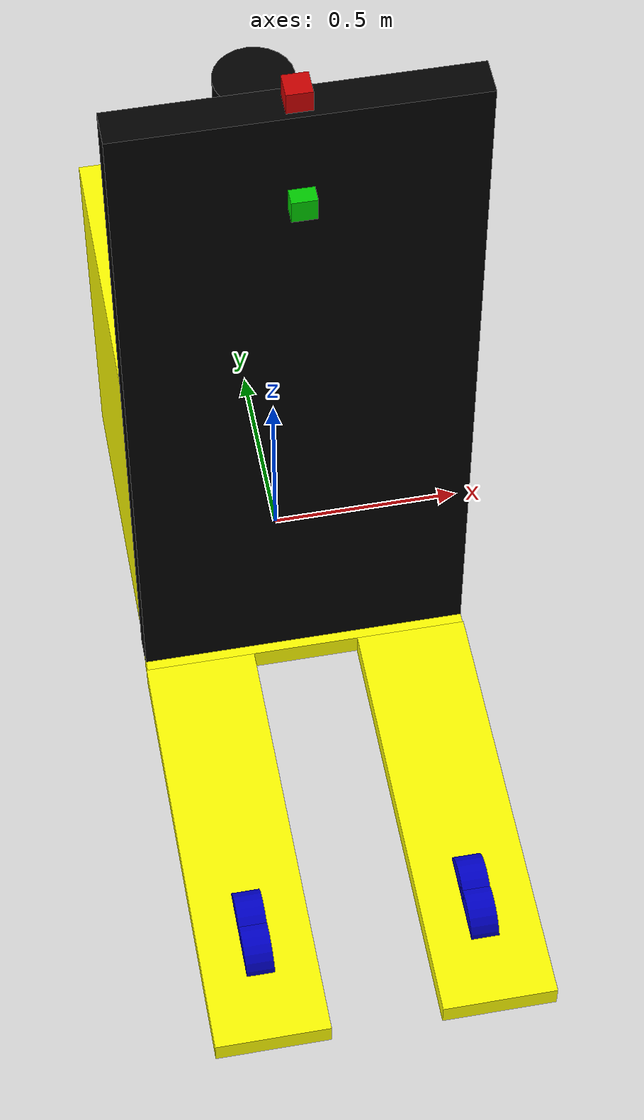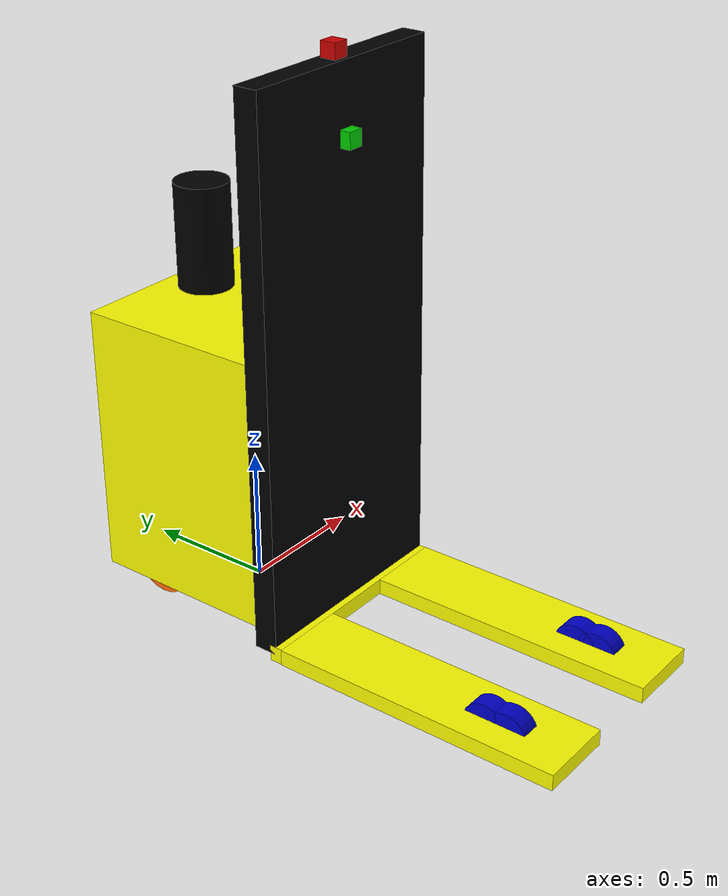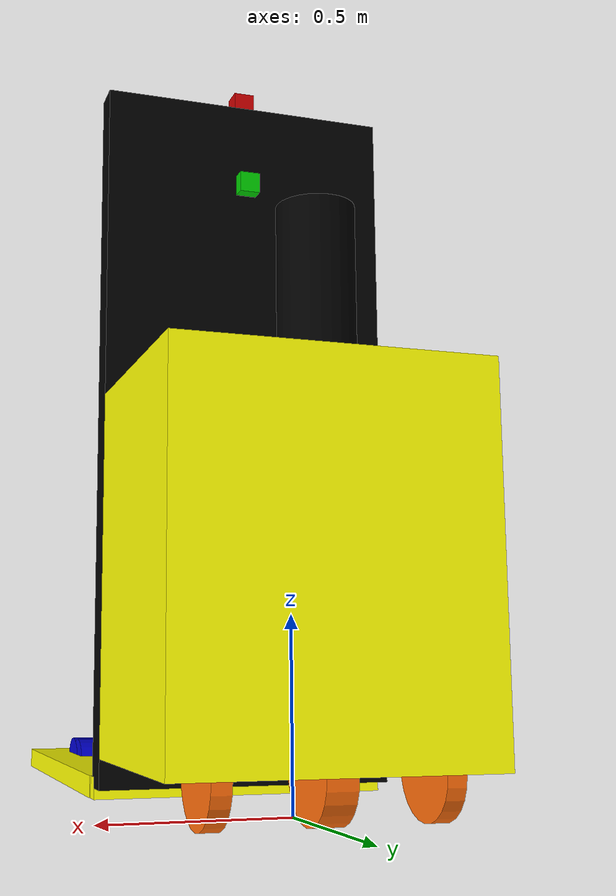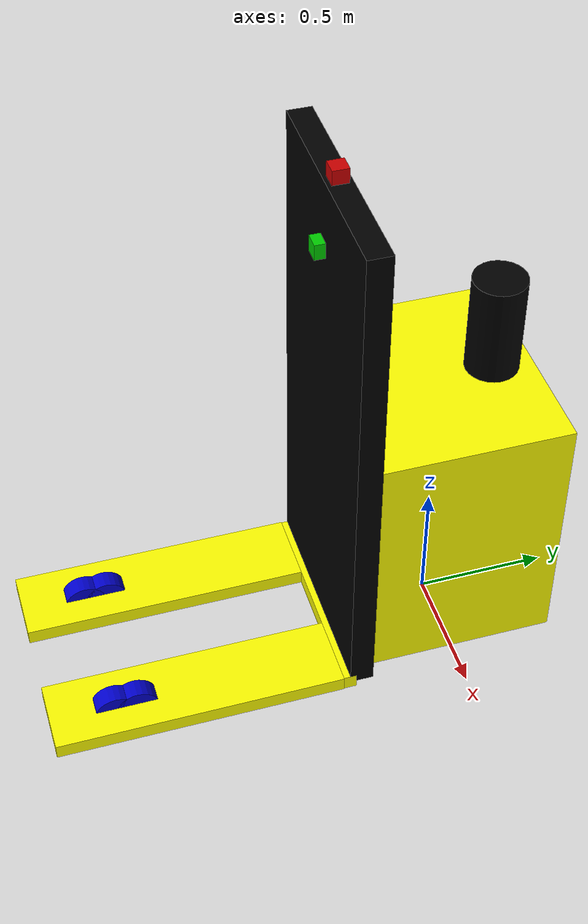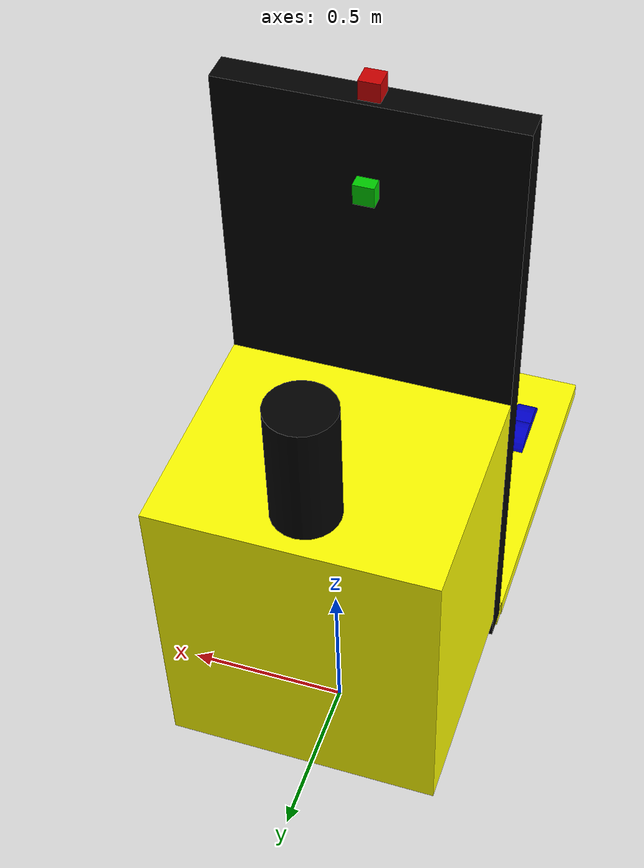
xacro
<?xml version="1.0"?>

<robot name="agv" xmlns:xacro="http://www.ros.org/wiki/xacro">

  <xacro:property name="laser_visual" value="true"/>
  <xacro:property name="imu_visual" value="false"/>

  <xacro:property name="PI" value="3.1415926535897931"/>

  <xacro:property name="chassisHeight" value="1"/>
  <xacro:property name="chassisLength" value="0.84"/>
  <xacro:property name="chassisWidth" value="0.7"/>
  <xacro:property name="chassisMass" value="100"/>

  <xacro:property name="casterRadius" value="0.125"/>
  <xacro:property name="casterWidth" value="0.05"/>
  <xacro:property name="casterMass" value="2"/>

  <xacro:property name="wheelWidth" value="0.08"/>
  <xacro:property name="wheelRadius" value="0.125"/>
  <xacro:property name="wheelMass" value="3"/>

  <xacro:property name="supportWheelWidth" value="0.07"/>
  <xacro:property name="supportWheelRadius" value="0.082"/>
  <xacro:property name="supportWheelMass" value="1"/>

  <xacro:property name="cameraSize" value="0.06"/>
  <xacro:property name="cameraMass" value="0.5"/>

  <xacro:include filename="$(find agv_description)/urdf/agv.gazebo" />
  <xacro:include filename="$(find agv_description)/urdf/materials.xacro" />
  <xacro:include filename="$(find agv_description)/urdf/macros.xacro" />

  <link name="footprint" />

  <joint name="base_joint" type="fixed">
    <parent link="footprint"/>
    <child link="chassis"/>
  </joint>

  <link name="chassis">
    <collision>
      <origin xyz="0 0 0.625" rpy="0 0 0"/>
      <geometry>
	<box size="${chassisLength} ${chassisWidth} ${chassisHeight}"/>
      </geometry>
    </collision>

    <visual>
      <origin xyz="0 0 0.625" rpy="0 0 0"/>
      <geometry>
	<box size="${chassisLength} ${chassisWidth} ${chassisHeight}"/>
      </geometry>
      <material name="yellow"/>
    </visual>

    <inertial>
      <origin xyz="0 0 0.625" rpy="0 0 0"/>
      <mass value="${chassisMass}"/>
      <box_inertia m="${chassisMass}" x="${chassisLength}" y="${chassisWidth}" z="${chassisHeight}"/>
    </inertial>
  </link>

  <joint name="imu_joint" type="fixed">
    <parent link="chassis"/>
    <child link="imu_link"/>
    <origin xyz="0 0.2 0.5" rpy="0 0 0"/>
  </joint>

  <link name="imu_link"/>

    <joint name="base_steer_joint" type="revolute">
        <parent link="chassis"/>
        <child link="steer_link"/>
        <origin xyz="0 0.2 1.125"/>
        <limit effort="1" velocity="0.25" lower="-1.20" upper="1.20"/>
        <axis xyz="0 0 1"/>
    </joint>

    <transmission name="trans1">
      <type>transmission_interface/SimpleTransmission</type>
      <joint name="base_steer_joint">
         <hardwareInterface>EffortJointInterface</hardwareInterface>
      </joint>
      <actuator name="motor1">
          <hardwareInterface>EffortJointInterface</hardwareInterface>
          <mechanicalReduction>1</mechanicalReduction>
      </actuator>

   </transmission>

    <link name="steer_link">
        <visual>
            <origin xyz="0 0 0.195" rpy="0 0 0"/>
            <geometry>
                <cylinder length="0.39" radius="0.1"/>
            </geometry>
            <material name="black"/>
        </visual>
        <inertial>
            <origin xyz="0 0 0.195" rpy="0 0 0"/>
            <mass value="1.5"/>
            <cylinder_inertia m="1.5" r="0.1" h="0.39"/>
        </inertial>
    </link>

    <joint name="steer_to_roll_joint" type="continuous">
        <parent link="steer_link"/>
        <child link="roll_link"/>
        <origin xyz="0 0 -1" rpy="0 0 0"/>
        <limit effort="0.1" velocity="0.35"/>
        <axis xyz="1 0 0"/>
    </joint>

    <transmission name="trans2">
      <type>transmission_interface/SimpleTransmission</type>
      <joint name="steer_to_roll_joint">
         <hardwareInterface>EffortJointInterface</hardwareInterface>
      </joint>
      <actuator name="motor2">
          <hardwareInterface>EffortJointInterface</hardwareInterface>
          <mechanicalReduction>1</mechanicalReduction>
      </actuator>

   </transmission>

    <link name="roll_link">
        <visual>
            <origin xyz="0 0 0" rpy="0 1.57 0"/>
            <geometry>
                <cylinder length="${wheelWidth}" radius="${wheelRadius}"/>
            </geometry>
            <material name="orange"/>
        </visual>
        <inertial>
            <origin xyz="0 0 0" rpy="0 1.57 0"/>
            <mass value="${wheelMass}"/>
            <cylinder_inertia m="${wheelMass}" r="${wheelRadius}" h="${wheelWidth}"/>
        </inertial>
    </link>

  <caster_wheel lr="left" tY="-0.285"/>
  <caster_wheel lr="right" tY="0.285"/>

    <joint name="forklift_base_joint" type="fixed">
        <parent link="chassis"/>
        <child link="forklift_base"/>
        <origin rpy="0 0 0" xyz="0 -0.395 0.043"/>
    </joint>

    <link name="forklift_base">
        <visual>
            <origin xyz="0 0 1" rpy="0 0 0"/>
            <geometry>
                <box size="0.84 0.09 2"/>
            </geometry>
            <material name="black"/>
        </visual>
        <collision>
            <origin xyz="0 0 1" rpy="0 0 0"/>
            <geometry>
                <box size="0.84 0.09 2"/>
            </geometry>
            <material name="black"/>

        </collision>
        <inertial>
            <origin xyz="0 0 1" rpy="0 0 0"/>
            <mass value="50"/>
            <box_inertia m="50" x="0.84" y="0.09" z="2"/>
        </inertial>
    </link>

    <joint name="laser_joint" type="fixed">
        <parent link="forklift_base"/>
        <child link="laser_link"/>
        <origin rpy="0 0 0" xyz="0 0 2.025"/>
    </joint>

    <link name="laser_link">
        <visual>
            <origin xyz="0 0 0" rpy="0 0 0"/>
            <geometry>
                <box size="${cameraSize} ${cameraSize} ${cameraSize}"/>
            </geometry>
            <material name="red"/>
        </visual>
        <inertial>
            <origin xyz="0 0 0" rpy="0 0 0"/>
            <mass value="${cameraMass}"/>
            <box_inertia m="${cameraMass}" x="${cameraSize}" y="${cameraSize}" z="${cameraSize}"/>
        </inertial>
        <collision>
            <origin xyz="0 0 0" rpy="0 0 0"/>
            <geometry>
                <box size="${cameraSize} ${cameraSize} ${cameraSize}"/>
            </geometry>
        </collision>

    </link>

    <joint name="forklift_prismatic_joint" type="prismatic">
        <parent link="forklift_base"/>
        <child link="forklift_prismatic_link"/>
        <origin rpy="0 0 0" xyz="0 -0.045 0"/>
        <limit effort="10" velocity="1.0" lower="0.0" upper="1.5"/>
        <axis xyz="0 0 1"/>
        <calibration rising="-0.5"/>

    </joint>

    <transmission name="trans3">
      <type>transmission_interface/SimpleTransmission</type>
      <joint name="forklift_prismatic_joint">
         <hardwareInterface>EffortJointInterface</hardwareInterface>
      </joint>
      <actuator name="motor3">
          <hardwareInterface>EffortJointInterface</hardwareInterface>
          <mechanicalReduction>1</mechanicalReduction>
      </actuator>

   </transmission>

    <link name="forklift_prismatic_link">
        <visual>
            <origin xyz="0 0 0" rpy="0 0 0"/>
            <geometry>
                <box size="0.84 0.05 0.06"/>
            </geometry>
            <material name="yellow"/>
        </visual>
        <collision>
            <origin xyz="0 0 0" rpy="0 0 0"/>
            <geometry>
                <box size="0.84 0.05 0.06"/>
            </geometry>
        </collision>
        <inertial>
            <origin xyz="0 0 0" rpy="0 0 0"/>
            <mass value="3"/>
            <box_inertia m="3" x="0.84" y="0.05" z="0.06"/>

        </inertial>
    </link>

  <forklift lr="left" tY="-0.280"/>
  <forklift lr="right" tY="0.280"/>

  <camera lr="left" tY="-0.055"/>
  <camera lr="right" tY="0.055"/>

</robot>

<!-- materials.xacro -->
<robot>

  <material name="black">
    <color rgba="0.0 0.0 0.0 1.0"/>
  </material>

  <material name="blue">
    <color rgba="0.0 0.0 0.8 1.0"/>
  </material>

  <material name="green">
    <color rgba="0.0 0.8 0.0 1.0"/>
  </material>

  <material name="grey">
    <color rgba="0.2 0.2 0.2 1.0"/>
  </material>

  <material name="orange">
    <color rgba="${255/255} ${108/255} ${10/255} 1.0"/>
  </material>

  <material name="brown">
    <color rgba="${222/255} ${207/255} ${195/255} 1.0"/>
  </material>

  <material name="red">
    <color rgba="0.8 0.0 0.0 1.0"/>
  </material>

  <material name="white">
    <color rgba="1.0 1.0 1.0 1.0"/>
  </material>

  <material name="yellow">
        <color rgba="1 1 0 1"/>
  </material>

</robot>

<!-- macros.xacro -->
<robot>
     <macro name="cylinder_inertia" params="m r h">
        <inertia  ixx="${m*(3*r*r+h*h)/12}" ixy = "0" ixz = "0"
                  iyy="${m*(3*r*r+h*h)/12}" iyz = "0"
                  izz="${m*r*r/2}" />
      </macro>

      <macro name="box_inertia" params="m x y z">
        <inertia  ixx="${m*(y*y+z*z)/12}" ixy = "0" ixz = "0"
                  iyy="${m*(x*x+z*z)/12}" iyz = "0"
                  izz="${m*(x*x+z*z)/12}" />
      </macro>

      <macro name="sphere_inertia" params="m r">
        <inertia  ixx="${2*m*r*r/5}" ixy = "0" ixz = "0"
                  iyy="${2*m*r*r/5}" iyz = "0"
                  izz="${2*m*r*r/5}" />
      </macro>

    <macro name="caster_wheel" params="lr tY">

      <joint name="${lr}_caster_yawn_joint" type="revolute">
        <parent link="chassis"/>
        <child link="${lr}_caster_base_link"/>
        <origin rpy="0 0 0" xyz="${tY} 0.2 0.125"/>
        <limit effort="0.01" velocity="0.4" lower="-1.5" upper="1.5" />
        <axis xyz="0 0 1"/>
      </joint>

      <link name="${lr}_caster_base_link">
        <visual>
            <origin xyz="0 0 0" rpy="0 0 0"/>
            <geometry>
                <cylinder length="0.005" radius="0.005"/>
            </geometry>
        </visual>
        <inertial>
            <origin xyz="0 0 0" rpy="0 0 0"/>
            <mass value="0.005"/>
            <cylinder_inertia m="0.005" r="0.005" h="0.005"/>
        </inertial>

      </link>

       <joint name="${lr}_wheel_hinge" type="continuous">
          <parent link="${lr}_caster_base_link"/>
          <child link="${lr}_wheel"/>
          <origin xyz="0 0 0" rpy="0 0 0" />
          <axis xyz="1 0 0"/>
          <limit effort="1" velocity="0.01"/>
       </joint>

       <link name="${lr}_wheel">

        <visual>
          <origin xyz="0 0 0" rpy="0 ${PI/2} 0" />
          <geometry>
           <cylinder length="${casterWidth}" radius="${casterRadius}"/>
          </geometry>
          <material name="orange"/>
        </visual>

        <inertial>
          <origin xyz="0 0 0" rpy="0 ${PI/2} 0" />
          <mass value="${casterMass}"/>
          <cylinder_inertia m="${casterMass}" r="${casterRadius}" h="${casterWidth}"/>
        </inertial>
       </link>

        <gazebo reference="${lr}_wheel">
          <mu1 value="1.0"/>
          <mu2 value="1.0"/>
          <kp  value="10000000.0" />
          <kd  value="10000000.0" />
          <fdir1 value="1 0 0"/>
          <material>Gazebo/Orange</material>
        </gazebo>

    </macro>

    <macro name="forklift" params="lr tY">
     <joint name="${lr}_foklift_support_joint" type="fixed">
        <parent link="forklift_prismatic_link"/>
        <child link="${lr}_forklift_moving_link"/>
        <origin xyz="${tY} -0.025 0" rpy="0 0 0"/>
      </joint>

    <link name="${lr}_forklift_moving_link">
        <visual>
            <origin xyz="0 -0.55 0" rpy="0 0 0"/>
            <geometry>
                <box size="0.285 1.1 0.06"/>
            </geometry>
            <material name="yellow"/>
        </visual>
        <collision>
            <origin xyz="0 -0.55 0" rpy="0 0 0"/>
            <geometry>
                <box size="0.285 1.1 0.06"/>
            </geometry>
        </collision>
        <inertial>
            <origin xyz="0 -0.55 0" rpy="0 0 0"/>
            <mass value="50"/>
            <box_inertia m="50" x="0.285" y="1.1" z="0.06"/>
        </inertial>
    </link>

    <joint name="${lr}_bogie_load_joint1" type="continuous">
        <parent link="${lr}_forklift_moving_link"/>
        <child link="${lr}_bogie_load_wheel1"/>
        <origin rpy="0 0 0" xyz="0 -0.851 0"/>
        <limit effort="0.01" velocity="0.01"/>
        <axis xyz="1 0 0"/>
    </joint>

    <gazebo reference="${lr}_forklift_moving_link">
        <material>Gazebo/Yellow</material>
    </gazebo>

    <link name="${lr}_bogie_load_wheel1">
        <visual>
            <origin xyz="0 0 0" rpy="0 1.57 0"/>
            <geometry>
                <cylinder length="${supportWheelWidth}" radius="${supportWheelRadius}"/>
            </geometry>
            <material name="blue"/>
        </visual>
        <inertial>
            <origin xyz="0 0 0" rpy="0 1.57 0"/>
            <mass value="${supportWheelMass}"/>
            <cylinder_inertia m="${supportWheelMass}" r="${supportWheelRadius}" h="${supportWheelWidth}"/>
        </inertial>
    </link>

    <gazebo reference="${lr}_bogie_load_wheel1">
            <mu1>1</mu1>
	    <mu2>1</mu2>
	    <kp>5000000.0</kp>
	    <kd>1000000.0</kd>
	    <maxVel>0.1</maxVel>
	    <fdir1>1 0 0</fdir1>
	    <material>Gazebo/Blue</material>
    </gazebo>

    <joint name="${lr}_bogie_load_joint2" type="continuous">
        <parent link="${lr}_forklift_moving_link"/>
        <child link="${lr}_bogie_load_wheel2"/>
        <origin rpy="0 0 0" xyz="0 -0.769 0"/>
        <limit effort="0.01" velocity="0.01"/>
        <axis xyz="1 0 0"/>
    </joint>

    <link name="${lr}_bogie_load_wheel2">
        <visual>
            <origin xyz="0 0 0" rpy="0 1.57 0"/>
            <geometry>
                <cylinder length="${supportWheelWidth}" radius="${supportWheelRadius}"/>
            </geometry>
            <material name="blue"/>
        </visual>
        <inertial>
            <origin xyz="0 0 0" rpy="0 1.57 0"/>
            <mass value="${supportWheelMass}"/>
            <cylinder_inertia m="${supportWheelMass}" r="${supportWheelRadius}" h="${supportWheelWidth}"/>
        </inertial>
    </link>

    <gazebo reference="${lr}_bogie_load_wheel2">
	    <mu1>1</mu1>
	    <mu2>1</mu2>
	    <kp>5000000.0</kp>
	    <kd>1000000.0</kd>
	    <maxVel>0.1</maxVel>
	    <fdir1>1 0 0</fdir1>
	    <material>Gazebo/Blue</material>
    </gazebo>

  </macro>

  <macro name="camera" params="lr tY">
    <joint name="${lr}_camera_joint" type="fixed">
        <parent link="forklift_base"/>
        <child link="${lr}_camera_link"/>
        <origin rpy="0 0 0" xyz="0 ${tY} 1.75"/>
    </joint>

    <link name="${lr}_camera_link">
        <visual>
            <origin xyz="0 0 0" rpy="0 0 0"/>
            <geometry>
                <box size="${cameraSize} ${cameraSize} ${cameraSize}"/>
            </geometry>
            <material name="green"/>
        </visual>
        <inertial>
            <origin xyz="0 0 0" rpy="0 0 0"/>
            <mass value="${cameraMass}"/>
            <box_inertia m="${cameraMass}" x="${cameraSize}" y="${cameraSize}" z="${cameraSize}"/>
        </inertial>
    </link>
    <gazebo reference="${lr}_camera_link">
      <material>Gazebo/Blue</material>
    </gazebo>

  </macro>
</robot>
